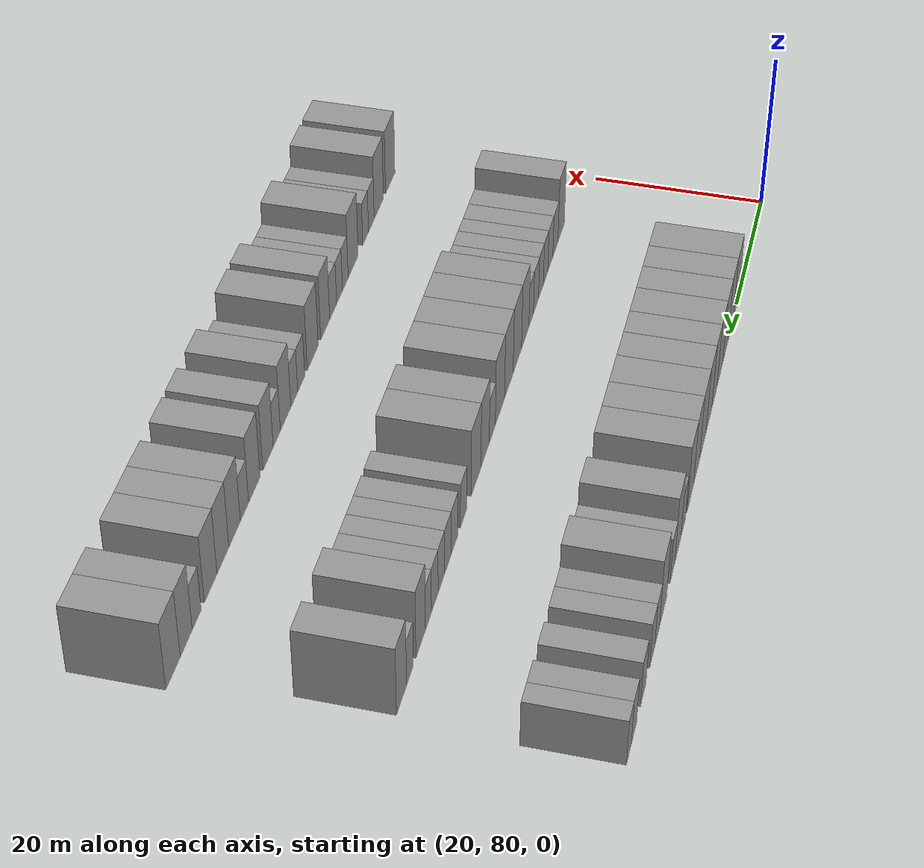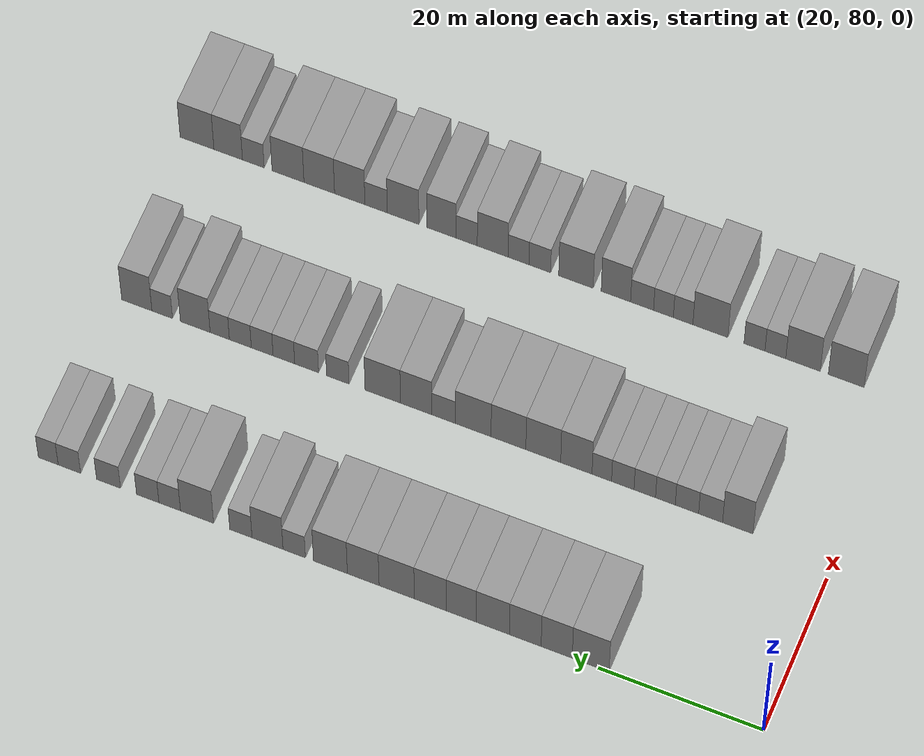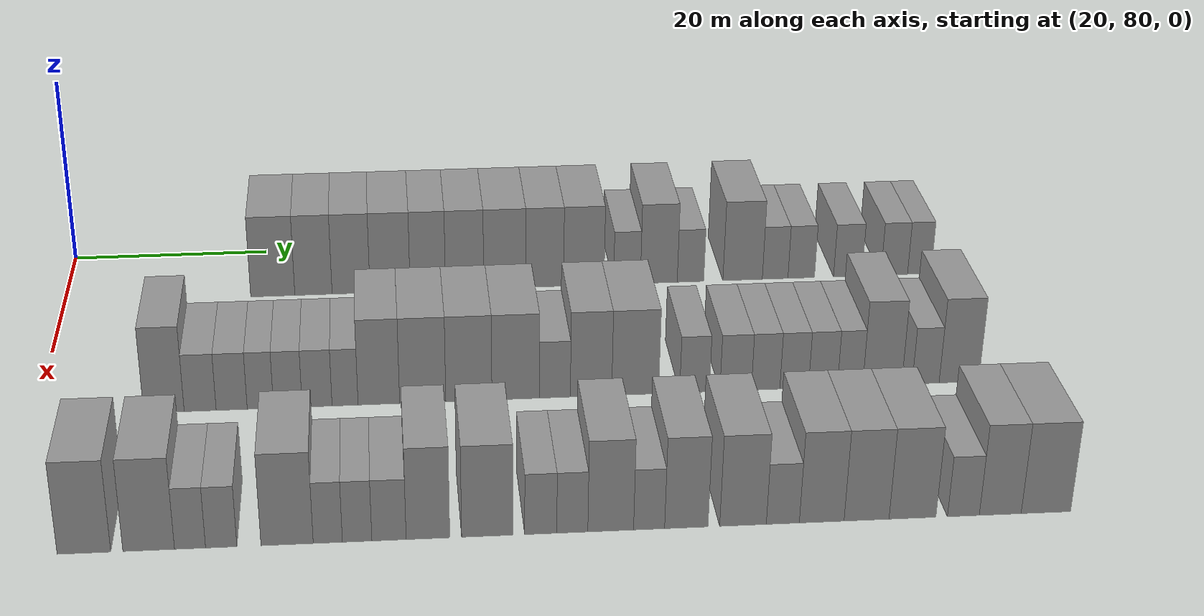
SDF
<sdf version="1.6">
 <world name="default">
  <model name="building_84">
   <static>1</static>
   <pose>25.0000 100.9925 0 0.000000 0.000000 0.000000</pose>
   <link name="link">
    <pose>0 0 4.50 0 0 0</pose>
    <collision name="collision"><geometry><box><size>10.0000 4.4793 9.0000</size></box></geometry></collision>
    <visual name="visual">
     <cast_shadows>0</cast_shadows>
     <geometry><box><size>10.0000 4.4793 9.0000</size></box></geometry>
     <material>
      <script>
       <uri>model://grey_wall/materials/scripts</uri>
       <uri>model://grey_wall/materials/textures</uri>
       <name>vrc/grey_wall</name>
      </script>
     </material>
    </visual>
   </link>
  </model>
  <model name="building_85">
   <static>1</static>
   <pose>25.0000 105.1284 0 0.000000 0.000000 0.000000</pose>
   <link name="link">
    <pose>0 0 4.50 0 0 0</pose>
    <collision name="collision"><geometry><box><size>10.0000 3.7925 9.0000</size></box></geometry></collision>
    <visual name="visual">
     <cast_shadows>0</cast_shadows>
     <geometry><box><size>10.0000 3.7925 9.0000</size></box></geometry>
     <material>
      <script>
       <uri>model://grey_wall/materials/scripts</uri>
       <uri>model://grey_wall/materials/textures</uri>
       <name>vrc/grey_wall</name>
      </script>
     </material>
    </visual>
   </link>
  </model>
  <model name="building_86">
   <static>1</static>
   <pose>25.0000 108.9590 0 0.000000 0.000000 0.000000</pose>
   <link name="link">
    <pose>0 0 4.50 0 0 0</pose>
    <collision name="collision"><geometry><box><size>10.0000 3.8688 9.0000</size></box></geometry></collision>
    <visual name="visual">
     <cast_shadows>0</cast_shadows>
     <geometry><box><size>10.0000 3.8688 9.0000</size></box></geometry>
     <material>
      <script>
       <uri>model://grey_wall/materials/scripts</uri>
       <uri>model://grey_wall/materials/textures</uri>
       <name>vrc/grey_wall</name>
      </script>
     </material>
    </visual>
   </link>
  </model>
  <model name="building_87">
   <static>1</static>
   <pose>25.0000 112.9441 0 0.000000 0.000000 0.000000</pose>
   <link name="link">
    <pose>0 0 4.50 0 0 0</pose>
    <collision name="collision"><geometry><box><size>10.0000 4.1012 9.0000</size></box></geometry></collision>
    <visual name="visual">
     <cast_shadows>0</cast_shadows>
     <geometry><box><size>10.0000 4.1012 9.0000</size></box></geometry>
     <material>
      <script>
       <uri>model://grey_wall/materials/scripts</uri>
       <uri>model://grey_wall/materials/textures</uri>
       <name>vrc/grey_wall</name>
      </script>
     </material>
    </visual>
   </link>
  </model>
  <model name="building_88">
   <static>1</static>
   <pose>25.0000 116.8053 0 0.000000 0.000000 0.000000</pose>
   <link name="link">
    <pose>0 0 4.50 0 0 0</pose>
    <collision name="collision"><geometry><box><size>10.0000 3.6213 9.0000</size></box></geometry></collision>
    <visual name="visual">
     <cast_shadows>0</cast_shadows>
     <geometry><box><size>10.0000 3.6213 9.0000</size></box></geometry>
     <material>
      <script>
       <uri>model://grey_wall/materials/scripts</uri>
       <uri>model://grey_wall/materials/textures</uri>
       <name>vrc/grey_wall</name>
      </script>
     </material>
    </visual>
   </link>
  </model>
  <model name="building_89">
   <static>1</static>
   <pose>25.0000 120.5786 0 0.000000 0.000000 0.000000</pose>
   <link name="link">
    <pose>0 0 4.50 0 0 0</pose>
    <collision name="collision"><geometry><box><size>10.0000 3.9252 9.0000</size></box></geometry></collision>
    <visual name="visual">
     <cast_shadows>0</cast_shadows>
     <geometry><box><size>10.0000 3.9252 9.0000</size></box></geometry>
     <material>
      <script>
       <uri>model://grey_wall/materials/scripts</uri>
       <uri>model://grey_wall/materials/textures</uri>
       <name>vrc/grey_wall</name>
      </script>
     </material>
    </visual>
   </link>
  </model>
  <model name="building_90">
   <static>1</static>
   <pose>25.0000 124.7098 0 0.000000 0.000000 0.000000</pose>
   <link name="link">
    <pose>0 0 4.50 0 0 0</pose>
    <collision name="collision"><geometry><box><size>10.0000 4.3372 9.0000</size></box></geometry></collision>
    <visual name="visual">
     <cast_shadows>0</cast_shadows>
     <geometry><box><size>10.0000 4.3372 9.0000</size></box></geometry>
     <material>
      <script>
       <uri>model://grey_wall/materials/scripts</uri>
       <uri>model://grey_wall/materials/textures</uri>
       <name>vrc/grey_wall</name>
      </script>
     </material>
    </visual>
   </link>
  </model>
  <model name="building_91">
   <static>1</static>
   <pose>25.0000 128.8318 0 0.000000 0.000000 0.000000</pose>
   <link name="link">
    <pose>0 0 4.50 0 0 0</pose>
    <collision name="collision"><geometry><box><size>10.0000 3.9068 9.0000</size></box></geometry></collision>
    <visual name="visual">
     <cast_shadows>0</cast_shadows>
     <geometry><box><size>10.0000 3.9068 9.0000</size></box></geometry>
     <material>
      <script>
       <uri>model://grey_wall/materials/scripts</uri>
       <uri>model://grey_wall/materials/textures</uri>
       <name>vrc/grey_wall</name>
      </script>
     </material>
    </visual>
   </link>
  </model>
  <model name="building_92">
   <static>1</static>
   <pose>25.0000 132.8733 0 0.000000 0.000000 0.000000</pose>
   <link name="link">
    <pose>0 0 4.50 0 0 0</pose>
    <collision name="collision"><geometry><box><size>10.0000 4.1762 9.0000</size></box></geometry></collision>
    <visual name="visual">
     <cast_shadows>0</cast_shadows>
     <geometry><box><size>10.0000 4.1762 9.0000</size></box></geometry>
     <material>
      <script>
       <uri>model://grey_wall/materials/scripts</uri>
       <uri>model://grey_wall/materials/textures</uri>
       <name>vrc/grey_wall</name>
      </script>
     </material>
    </visual>
   </link>
  </model>
  <model name="building_93">
   <static>1</static>
   <pose>25.0000 137.3470 0 0.000000 0.000000 0.000000</pose>
   <link name="link">
    <pose>0 0 3.00 0 0 0</pose>
    <collision name="collision"><geometry><box><size>10.0000 2.7713 6.0000</size></box></geometry></collision>
    <visual name="visual">
     <cast_shadows>0</cast_shadows>
     <geometry><box><size>10.0000 2.7713 6.0000</size></box></geometry>
     <material>
      <script>
       <uri>model://grey_wall/materials/scripts</uri>
       <uri>model://grey_wall/materials/textures</uri>
       <name>vrc/grey_wall</name>
      </script>
     </material>
    </visual>
   </link>
  </model>
  <model name="building_94">
   <static>1</static>
   <pose>25.0000 140.6502 0 0.000000 0.000000 0.000000</pose>
   <link name="link">
    <pose>0 0 4.50 0 0 0</pose>
    <collision name="collision"><geometry><box><size>10.0000 3.8351 9.0000</size></box></geometry></collision>
    <visual name="visual">
     <cast_shadows>0</cast_shadows>
     <geometry><box><size>10.0000 3.8351 9.0000</size></box></geometry>
     <material>
      <script>
       <uri>model://grey_wall/materials/scripts</uri>
       <uri>model://grey_wall/materials/textures</uri>
       <name>vrc/grey_wall</name>
      </script>
     </material>
    </visual>
   </link>
  </model>
  <model name="building_95">
   <static>1</static>
   <pose>25.0000 143.9493 0 0.000000 0.000000 0.000000</pose>
   <link name="link">
    <pose>0 0 3.00 0 0 0</pose>
    <collision name="collision"><geometry><box><size>10.0000 2.7630 6.0000</size></box></geometry></collision>
    <visual name="visual">
     <cast_shadows>0</cast_shadows>
     <geometry><box><size>10.0000 2.7630 6.0000</size></box></geometry>
     <material>
      <script>
       <uri>model://grey_wall/materials/scripts</uri>
       <uri>model://grey_wall/materials/textures</uri>
       <name>vrc/grey_wall</name>
      </script>
     </material>
    </visual>
   </link>
  </model>
  <model name="building_96">
   <static>1</static>
   <pose>25.0000 149.3896 0 0.000000 0.000000 0.000000</pose>
   <link name="link">
    <pose>0 0 4.50 0 0 0</pose>
    <collision name="collision"><geometry><box><size>10.0000 4.1176 9.0000</size></box></geometry></collision>
    <visual name="visual">
     <cast_shadows>0</cast_shadows>
     <geometry><box><size>10.0000 4.1176 9.0000</size></box></geometry>
     <material>
      <script>
       <uri>model://grey_wall/materials/scripts</uri>
       <uri>model://grey_wall/materials/textures</uri>
       <name>vrc/grey_wall</name>
      </script>
     </material>
    </visual>
   </link>
  </model>
  <model name="building_97">
   <static>1</static>
   <pose>25.0000 152.7905 0 0.000000 0.000000 0.000000</pose>
   <link name="link">
    <pose>0 0 3.00 0 0 0</pose>
    <collision name="collision"><geometry><box><size>10.0000 2.6843 6.0000</size></box></geometry></collision>
    <visual name="visual">
     <cast_shadows>0</cast_shadows>
     <geometry><box><size>10.0000 2.6843 6.0000</size></box></geometry>
     <material>
      <script>
       <uri>model://grey_wall/materials/scripts</uri>
       <uri>model://grey_wall/materials/textures</uri>
       <name>vrc/grey_wall</name>
      </script>
     </material>
    </visual>
   </link>
  </model>
  <model name="building_98">
   <static>1</static>
   <pose>25.0000 155.5267 0 0.000000 0.000000 0.000000</pose>
   <link name="link">
    <pose>0 0 3.00 0 0 0</pose>
    <collision name="collision"><geometry><box><size>10.0000 2.7880 6.0000</size></box></geometry></collision>
    <visual name="visual">
     <cast_shadows>0</cast_shadows>
     <geometry><box><size>10.0000 2.7880 6.0000</size></box></geometry>
     <material>
      <script>
       <uri>model://grey_wall/materials/scripts</uri>
       <uri>model://grey_wall/materials/textures</uri>
       <name>vrc/grey_wall</name>
      </script>
     </material>
    </visual>
   </link>
  </model>
  <model name="building_99">
   <static>1</static>
   <pose>25.0000 160.4130 0 0.000000 0.000000 0.000000</pose>
   <link name="link">
    <pose>0 0 3.00 0 0 0</pose>
    <collision name="collision"><geometry><box><size>10.0000 2.9847 6.0000</size></box></geometry></collision>
    <visual name="visual">
     <cast_shadows>0</cast_shadows>
     <geometry><box><size>10.0000 2.9847 6.0000</size></box></geometry>
     <material>
      <script>
       <uri>model://grey_wall/materials/scripts</uri>
       <uri>model://grey_wall/materials/textures</uri>
       <name>vrc/grey_wall</name>
      </script>
     </material>
    </visual>
   </link>
  </model>
  <model name="building_100">
   <static>1</static>
   <pose>25.0000 165.3117 0 0.000000 0.000000 0.000000</pose>
   <link name="link">
    <pose>0 0 3.00 0 0 0</pose>
    <collision name="collision"><geometry><box><size>10.0000 2.8128 6.0000</size></box></geometry></collision>
    <visual name="visual">
     <cast_shadows>0</cast_shadows>
     <geometry><box><size>10.0000 2.8128 6.0000</size></box></geometry>
     <material>
      <script>
       <uri>model://grey_wall/materials/scripts</uri>
       <uri>model://grey_wall/materials/textures</uri>
       <name>vrc/grey_wall</name>
      </script>
     </material>
    </visual>
   </link>
  </model>
  <model name="building_101">
   <static>1</static>
   <pose>25.0000 167.9544 0 0.000000 0.000000 0.000000</pose>
   <link name="link">
    <pose>0 0 3.00 0 0 0</pose>
    <collision name="collision"><geometry><box><size>10.0000 2.4724 6.0000</size></box></geometry></collision>
    <visual name="visual">
     <cast_shadows>0</cast_shadows>
     <geometry><box><size>10.0000 2.4724 6.0000</size></box></geometry>
     <material>
      <script>
       <uri>model://grey_wall/materials/scripts</uri>
       <uri>model://grey_wall/materials/textures</uri>
       <name>vrc/grey_wall</name>
      </script>
     </material>
    </visual>
   </link>
  </model>
  <model name="building_211">
   <static>1</static>
   <pose>47.0000 91.6652 0 0.000000 0.000000 0.000000</pose>
   <link name="link">
    <pose>0 0 4.50 0 0 0</pose>
    <collision name="collision"><geometry><box><size>10.0000 3.7141 9.0000</size></box></geometry></collision>
    <visual name="visual">
     <cast_shadows>0</cast_shadows>
     <geometry><box><size>10.0000 3.7141 9.0000</size></box></geometry>
     <material>
      <script>
       <uri>model://grey_wall/materials/scripts</uri>
       <uri>model://grey_wall/materials/textures</uri>
       <name>vrc/grey_wall</name>
      </script>
     </material>
    </visual>
   </link>
  </model>
  <model name="building_212">
   <static>1</static>
   <pose>47.0000 94.9913 0 0.000000 0.000000 0.000000</pose>
   <link name="link">
    <pose>0 0 3.00 0 0 0</pose>
    <collision name="collision"><geometry><box><size>10.0000 2.9380 6.0000</size></box></geometry></collision>
    <visual name="visual">
     <cast_shadows>0</cast_shadows>
     <geometry><box><size>10.0000 2.9380 6.0000</size></box></geometry>
     <material>
      <script>
       <uri>model://grey_wall/materials/scripts</uri>
       <uri>model://grey_wall/materials/textures</uri>
       <name>vrc/grey_wall</name>
      </script>
     </material>
    </visual>
   </link>
  </model>
  <model name="building_213">
   <static>1</static>
   <pose>47.0000 97.8929 0 0.000000 0.000000 0.000000</pose>
   <link name="link">
    <pose>0 0 3.00 0 0 0</pose>
    <collision name="collision"><geometry><box><size>10.0000 2.8651 6.0000</size></box></geometry></collision>
    <visual name="visual">
     <cast_shadows>0</cast_shadows>
     <geometry><box><size>10.0000 2.8651 6.0000</size></box></geometry>
     <material>
      <script>
       <uri>model://grey_wall/materials/scripts</uri>
       <uri>model://grey_wall/materials/textures</uri>
       <name>vrc/grey_wall</name>
      </script>
     </material>
    </visual>
   </link>
  </model>
  <model name="building_214">
   <static>1</static>
   <pose>47.0000 100.5394 0 0.000000 0.000000 0.000000</pose>
   <link name="link">
    <pose>0 0 3.00 0 0 0</pose>
    <collision name="collision"><geometry><box><size>10.0000 2.4280 6.0000</size></box></geometry></collision>
    <visual name="visual">
     <cast_shadows>0</cast_shadows>
     <geometry><box><size>10.0000 2.4280 6.0000</size></box></geometry>
     <material>
      <script>
       <uri>model://grey_wall/materials/scripts</uri>
       <uri>model://grey_wall/materials/textures</uri>
       <name>vrc/grey_wall</name>
      </script>
     </material>
    </visual>
   </link>
  </model>
  <model name="building_215">
   <static>1</static>
   <pose>47.0000 103.0759 0 0.000000 0.000000 0.000000</pose>
   <link name="link">
    <pose>0 0 3.00 0 0 0</pose>
    <collision name="collision"><geometry><box><size>10.0000 2.6451 6.0000</size></box></geometry></collision>
    <visual name="visual">
     <cast_shadows>0</cast_shadows>
     <geometry><box><size>10.0000 2.6451 6.0000</size></box></geometry>
     <material>
      <script>
       <uri>model://grey_wall/materials/scripts</uri>
       <uri>model://grey_wall/materials/textures</uri>
       <name>vrc/grey_wall</name>
      </script>
     </material>
    </visual>
   </link>
  </model>
  <model name="building_216">
   <static>1</static>
   <pose>47.0000 105.7823 0 0.000000 0.000000 0.000000</pose>
   <link name="link">
    <pose>0 0 3.00 0 0 0</pose>
    <collision name="collision"><geometry><box><size>10.0000 2.7676 6.0000</size></box></geometry></collision>
    <visual name="visual">
     <cast_shadows>0</cast_shadows>
     <geometry><box><size>10.0000 2.7676 6.0000</size></box></geometry>
     <material>
      <script>
       <uri>model://grey_wall/materials/scripts</uri>
       <uri>model://grey_wall/materials/textures</uri>
       <name>vrc/grey_wall</name>
      </script>
     </material>
    </visual>
   </link>
  </model>
  <model name="building_217">
   <static>1</static>
   <pose>47.0000 108.3721 0 0.000000 0.000000 0.000000</pose>
   <link name="link">
    <pose>0 0 3.00 0 0 0</pose>
    <collision name="collision"><geometry><box><size>10.0000 2.4120 6.0000</size></box></geometry></collision>
    <visual name="visual">
     <cast_shadows>0</cast_shadows>
     <geometry><box><size>10.0000 2.4120 6.0000</size></box></geometry>
     <material>
      <script>
       <uri>model://grey_wall/materials/scripts</uri>
       <uri>model://grey_wall/materials/textures</uri>
       <name>vrc/grey_wall</name>
      </script>
     </material>
    </visual>
   </link>
  </model>
  <model name="building_218">
   <static>1</static>
   <pose>47.0000 111.5101 0 0.000000 0.000000 0.000000</pose>
   <link name="link">
    <pose>0 0 4.50 0 0 0</pose>
    <collision name="collision"><geometry><box><size>10.0000 3.8639 9.0000</size></box></geometry></collision>
    <visual name="visual">
     <cast_shadows>0</cast_shadows>
     <geometry><box><size>10.0000 3.8639 9.0000</size></box></geometry>
     <material>
      <script>
       <uri>model://grey_wall/materials/scripts</uri>
       <uri>model://grey_wall/materials/textures</uri>
       <name>vrc/grey_wall</name>
      </script>
     </material>
    </visual>
   </link>
  </model>
  <model name="building_219">
   <static>1</static>
   <pose>47.0000 115.5939 0 0.000000 0.000000 0.000000</pose>
   <link name="link">
    <pose>0 0 4.50 0 0 0</pose>
    <collision name="collision"><geometry><box><size>10.0000 4.3036 9.0000</size></box></geometry></collision>
    <visual name="visual">
     <cast_shadows>0</cast_shadows>
     <geometry><box><size>10.0000 4.3036 9.0000</size></box></geometry>
     <material>
      <script>
       <uri>model://grey_wall/materials/scripts</uri>
       <uri>model://grey_wall/materials/textures</uri>
       <name>vrc/grey_wall</name>
      </script>
     </material>
    </visual>
   </link>
  </model>
  <model name="building_220">
   <static>1</static>
   <pose>47.0000 119.9001 0 0.000000 0.000000 0.000000</pose>
   <link name="link">
    <pose>0 0 4.50 0 0 0</pose>
    <collision name="collision"><geometry><box><size>10.0000 4.3089 9.0000</size></box></geometry></collision>
    <visual name="visual">
     <cast_shadows>0</cast_shadows>
     <geometry><box><size>10.0000 4.3089 9.0000</size></box></geometry>
     <material>
      <script>
       <uri>model://grey_wall/materials/scripts</uri>
       <uri>model://grey_wall/materials/textures</uri>
       <name>vrc/grey_wall</name>
      </script>
     </material>
    </visual>
   </link>
  </model>
  <model name="building_221">
   <static>1</static>
   <pose>47.0000 124.2778 0 0.000000 0.000000 0.000000</pose>
   <link name="link">
    <pose>0 0 4.50 0 0 0</pose>
    <collision name="collision"><geometry><box><size>10.0000 4.4464 9.0000</size></box></geometry></collision>
    <visual name="visual">
     <cast_shadows>0</cast_shadows>
     <geometry><box><size>10.0000 4.4464 9.0000</size></box></geometry>
     <material>
      <script>
       <uri>model://grey_wall/materials/scripts</uri>
       <uri>model://grey_wall/materials/textures</uri>
       <name>vrc/grey_wall</name>
      </script>
     </material>
    </visual>
   </link>
  </model>
  <model name="building_222">
   <static>1</static>
   <pose>47.0000 127.9565 0 0.000000 0.000000 0.000000</pose>
   <link name="link">
    <pose>0 0 3.00 0 0 0</pose>
    <collision name="collision"><geometry><box><size>10.0000 2.9110 6.0000</size></box></geometry></collision>
    <visual name="visual">
     <cast_shadows>0</cast_shadows>
     <geometry><box><size>10.0000 2.9110 6.0000</size></box></geometry>
     <material>
      <script>
       <uri>model://grey_wall/materials/scripts</uri>
       <uri>model://grey_wall/materials/textures</uri>
       <name>vrc/grey_wall</name>
      </script>
     </material>
    </visual>
   </link>
  </model>
  <model name="building_223">
   <static>1</static>
   <pose>47.0000 131.3579 0 0.000000 0.000000 0.000000</pose>
   <link name="link">
    <pose>0 0 4.50 0 0 0</pose>
    <collision name="collision"><geometry><box><size>10.0000 3.8919 9.0000</size></box></geometry></collision>
    <visual name="visual">
     <cast_shadows>0</cast_shadows>
     <geometry><box><size>10.0000 3.8919 9.0000</size></box></geometry>
     <material>
      <script>
       <uri>model://grey_wall/materials/scripts</uri>
       <uri>model://grey_wall/materials/textures</uri>
       <name>vrc/grey_wall</name>
      </script>
     </material>
    </visual>
   </link>
  </model>
  <model name="building_224">
   <static>1</static>
   <pose>47.0000 135.5166 0 0.000000 0.000000 0.000000</pose>
   <link name="link">
    <pose>0 0 4.50 0 0 0</pose>
    <collision name="collision"><geometry><box><size>10.0000 4.4255 9.0000</size></box></geometry></collision>
    <visual name="visual">
     <cast_shadows>0</cast_shadows>
     <geometry><box><size>10.0000 4.4255 9.0000</size></box></geometry>
     <material>
      <script>
       <uri>model://grey_wall/materials/scripts</uri>
       <uri>model://grey_wall/materials/textures</uri>
       <name>vrc/grey_wall</name>
      </script>
     </material>
    </visual>
   </link>
  </model>
  <model name="building_225">
   <static>1</static>
   <pose>47.0000 141.1358 0 0.000000 0.000000 0.000000</pose>
   <link name="link">
    <pose>0 0 3.00 0 0 0</pose>
    <collision name="collision"><geometry><box><size>10.0000 2.8129 6.0000</size></box></geometry></collision>
    <visual name="visual">
     <cast_shadows>0</cast_shadows>
     <geometry><box><size>10.0000 2.8129 6.0000</size></box></geometry>
     <material>
      <script>
       <uri>model://grey_wall/materials/scripts</uri>
       <uri>model://grey_wall/materials/textures</uri>
       <name>vrc/grey_wall</name>
      </script>
     </material>
    </visual>
   </link>
  </model>
  <model name="building_226">
   <static>1</static>
   <pose>47.0000 145.0381 0 0.000000 0.000000 0.000000</pose>
   <link name="link">
    <pose>0 0 3.00 0 0 0</pose>
    <collision name="collision"><geometry><box><size>10.0000 2.9916 6.0000</size></box></geometry></collision>
    <visual name="visual">
     <cast_shadows>0</cast_shadows>
     <geometry><box><size>10.0000 2.9916 6.0000</size></box></geometry>
     <material>
      <script>
       <uri>model://grey_wall/materials/scripts</uri>
       <uri>model://grey_wall/materials/textures</uri>
       <name>vrc/grey_wall</name>
      </script>
     </material>
    </visual>
   </link>
  </model>
  <model name="building_227">
   <static>1</static>
   <pose>47.0000 147.8905 0 0.000000 0.000000 0.000000</pose>
   <link name="link">
    <pose>0 0 3.00 0 0 0</pose>
    <collision name="collision"><geometry><box><size>10.0000 2.7133 6.0000</size></box></geometry></collision>
    <visual name="visual">
     <cast_shadows>0</cast_shadows>
     <geometry><box><size>10.0000 2.7133 6.0000</size></box></geometry>
     <material>
      <script>
       <uri>model://grey_wall/materials/scripts</uri>
       <uri>model://grey_wall/materials/textures</uri>
       <name>vrc/grey_wall</name>
      </script>
     </material>
    </visual>
   </link>
  </model>
  <model name="building_228">
   <static>1</static>
   <pose>47.0000 150.6139 0 0.000000 0.000000 0.000000</pose>
   <link name="link">
    <pose>0 0 3.00 0 0 0</pose>
    <collision name="collision"><geometry><box><size>10.0000 2.7334 6.0000</size></box></geometry></collision>
    <visual name="visual">
     <cast_shadows>0</cast_shadows>
     <geometry><box><size>10.0000 2.7334 6.0000</size></box></geometry>
     <material>
      <script>
       <uri>model://grey_wall/materials/scripts</uri>
       <uri>model://grey_wall/materials/textures</uri>
       <name>vrc/grey_wall</name>
      </script>
     </material>
    </visual>
   </link>
  </model>
  <model name="building_229">
   <static>1</static>
   <pose>47.0000 153.3597 0 0.000000 0.000000 0.000000</pose>
   <link name="link">
    <pose>0 0 3.00 0 0 0</pose>
    <collision name="collision"><geometry><box><size>10.0000 2.7584 6.0000</size></box></geometry></collision>
    <visual name="visual">
     <cast_shadows>0</cast_shadows>
     <geometry><box><size>10.0000 2.7584 6.0000</size></box></geometry>
     <material>
      <script>
       <uri>model://grey_wall/materials/scripts</uri>
       <uri>model://grey_wall/materials/textures</uri>
       <name>vrc/grey_wall</name>
      </script>
     </material>
    </visual>
   </link>
  </model>
  <model name="building_230">
   <static>1</static>
   <pose>47.0000 155.9486 0 0.000000 0.000000 0.000000</pose>
   <link name="link">
    <pose>0 0 3.00 0 0 0</pose>
    <collision name="collision"><geometry><box><size>10.0000 2.4192 6.0000</size></box></geometry></collision>
    <visual name="visual">
     <cast_shadows>0</cast_shadows>
     <geometry><box><size>10.0000 2.4192 6.0000</size></box></geometry>
     <material>
      <script>
       <uri>model://grey_wall/materials/scripts</uri>
       <uri>model://grey_wall/materials/textures</uri>
       <name>vrc/grey_wall</name>
      </script>
     </material>
    </visual>
   </link>
  </model>
  <model name="building_231">
   <static>1</static>
   <pose>47.0000 159.0295 0 0.000000 0.000000 0.000000</pose>
   <link name="link">
    <pose>0 0 4.50 0 0 0</pose>
    <collision name="collision"><geometry><box><size>10.0000 3.7427 9.0000</size></box></geometry></collision>
    <visual name="visual">
     <cast_shadows>0</cast_shadows>
     <geometry><box><size>10.0000 3.7427 9.0000</size></box></geometry>
     <material>
      <script>
       <uri>model://grey_wall/materials/scripts</uri>
       <uri>model://grey_wall/materials/textures</uri>
       <name>vrc/grey_wall</name>
      </script>
     </material>
    </visual>
   </link>
  </model>
  <model name="building_232">
   <static>1</static>
   <pose>47.0000 163.1984 0 0.000000 0.000000 0.000000</pose>
   <link name="link">
    <pose>0 0 3.00 0 0 0</pose>
    <collision name="collision"><geometry><box><size>10.0000 2.5952 6.0000</size></box></geometry></collision>
    <visual name="visual">
     <cast_shadows>0</cast_shadows>
     <geometry><box><size>10.0000 2.5952 6.0000</size></box></geometry>
     <material>
      <script>
       <uri>model://grey_wall/materials/scripts</uri>
       <uri>model://grey_wall/materials/textures</uri>
       <name>vrc/grey_wall</name>
      </script>
     </material>
    </visual>
   </link>
  </model>
  <model name="building_233">
   <static>1</static>
   <pose>47.0000 166.4016 0 0.000000 0.000000 0.000000</pose>
   <link name="link">
    <pose>0 0 4.50 0 0 0</pose>
    <collision name="collision"><geometry><box><size>10.0000 3.8112 9.0000</size></box></geometry></collision>
    <visual name="visual">
     <cast_shadows>0</cast_shadows>
     <geometry><box><size>10.0000 3.8112 9.0000</size></box></geometry>
     <material>
      <script>
       <uri>model://grey_wall/materials/scripts</uri>
       <uri>model://grey_wall/materials/textures</uri>
       <name>vrc/grey_wall</name>
      </script>
     </material>
    </visual>
   </link>
  </model>
  <model name="building_341">
   <static>1</static>
   <pose>69.0000 86.7571 0 0.000000 0.000000 0.000000</pose>
   <link name="link">
    <pose>0 0 4.50 0 0 0</pose>
    <collision name="collision"><geometry><box><size>10.0000 4.4089 9.0000</size></box></geometry></collision>
    <visual name="visual">
     <cast_shadows>0</cast_shadows>
     <geometry><box><size>10.0000 4.4089 9.0000</size></box></geometry>
     <material>
      <script>
       <uri>model://grey_wall/materials/scripts</uri>
       <uri>model://grey_wall/materials/textures</uri>
       <name>vrc/grey_wall</name>
      </script>
     </material>
    </visual>
   </link>
  </model>
  <model name="building_342">
   <static>1</static>
   <pose>69.0000 92.0916 0 0.000000 0.000000 0.000000</pose>
   <link name="link">
    <pose>0 0 4.50 0 0 0</pose>
    <collision name="collision"><geometry><box><size>10.0000 4.2603 9.0000</size></box></geometry></collision>
    <visual name="visual">
     <cast_shadows>0</cast_shadows>
     <geometry><box><size>10.0000 4.2603 9.0000</size></box></geometry>
     <material>
      <script>
       <uri>model://grey_wall/materials/scripts</uri>
       <uri>model://grey_wall/materials/textures</uri>
       <name>vrc/grey_wall</name>
      </script>
     </material>
    </visual>
   </link>
  </model>
  <model name="building_343">
   <static>1</static>
   <pose>69.0000 95.5079 0 0.000000 0.000000 0.000000</pose>
   <link name="link">
    <pose>0 0 3.00 0 0 0</pose>
    <collision name="collision"><geometry><box><size>10.0000 2.5723 6.0000</size></box></geometry></collision>
    <visual name="visual">
     <cast_shadows>0</cast_shadows>
     <geometry><box><size>10.0000 2.5723 6.0000</size></box></geometry>
     <material>
      <script>
       <uri>model://grey_wall/materials/scripts</uri>
       <uri>model://grey_wall/materials/textures</uri>
       <name>vrc/grey_wall</name>
      </script>
     </material>
    </visual>
   </link>
  </model>
  <model name="building_344">
   <static>1</static>
   <pose>69.0000 98.0931 0 0.000000 0.000000 0.000000</pose>
   <link name="link">
    <pose>0 0 3.00 0 0 0</pose>
    <collision name="collision"><geometry><box><size>10.0000 2.5981 6.0000</size></box></geometry></collision>
    <visual name="visual">
     <cast_shadows>0</cast_shadows>
     <geometry><box><size>10.0000 2.5981 6.0000</size></box></geometry>
     <material>
      <script>
       <uri>model://grey_wall/materials/scripts</uri>
       <uri>model://grey_wall/materials/textures</uri>
       <name>vrc/grey_wall</name>
      </script>
     </material>
    </visual>
   </link>
  </model>
  <model name="building_345">
   <static>1</static>
   <pose>69.0000 103.5662 0 0.000000 0.000000 0.000000</pose>
   <link name="link">
    <pose>0 0 4.50 0 0 0</pose>
    <collision name="collision"><geometry><box><size>10.0000 4.3481 9.0000</size></box></geometry></collision>
    <visual name="visual">
     <cast_shadows>0</cast_shadows>
     <geometry><box><size>10.0000 4.3481 9.0000</size></box></geometry>
     <material>
      <script>
       <uri>model://grey_wall/materials/scripts</uri>
       <uri>model://grey_wall/materials/textures</uri>
       <name>vrc/grey_wall</name>
      </script>
     </material>
    </visual>
   </link>
  </model>
  <model name="building_346">
   <static>1</static>
   <pose>69.0000 106.9568 0 0.000000 0.000000 0.000000</pose>
   <link name="link">
    <pose>0 0 3.00 0 0 0</pose>
    <collision name="collision"><geometry><box><size>10.0000 2.4331 6.0000</size></box></geometry></collision>
    <visual name="visual">
     <cast_shadows>0</cast_shadows>
     <geometry><box><size>10.0000 2.4331 6.0000</size></box></geometry>
     <material>
      <script>
       <uri>model://grey_wall/materials/scripts</uri>
       <uri>model://grey_wall/materials/textures</uri>
       <name>vrc/grey_wall</name>
      </script>
     </material>
    </visual>
   </link>
  </model>
  <model name="building_347">
   <static>1</static>
   <pose>69.0000 109.4055 0 0.000000 0.000000 0.000000</pose>
   <link name="link">
    <pose>0 0 3.00 0 0 0</pose>
    <collision name="collision"><geometry><box><size>10.0000 2.4643 6.0000</size></box></geometry></collision>
    <visual name="visual">
     <cast_shadows>0</cast_shadows>
     <geometry><box><size>10.0000 2.4643 6.0000</size></box></geometry>
     <material>
      <script>
       <uri>model://grey_wall/materials/scripts</uri>
       <uri>model://grey_wall/materials/textures</uri>
       <name>vrc/grey_wall</name>
      </script>
     </material>
    </visual>
   </link>
  </model>
  <model name="building_348">
   <static>1</static>
   <pose>69.0000 112.0730 0 0.000000 0.000000 0.000000</pose>
   <link name="link">
    <pose>0 0 3.00 0 0 0</pose>
    <collision name="collision"><geometry><box><size>10.0000 2.8707 6.0000</size></box></geometry></collision>
    <visual name="visual">
     <cast_shadows>0</cast_shadows>
     <geometry><box><size>10.0000 2.8707 6.0000</size></box></geometry>
     <material>
      <script>
       <uri>model://grey_wall/materials/scripts</uri>
       <uri>model://grey_wall/materials/textures</uri>
       <name>vrc/grey_wall</name>
      </script>
     </material>
    </visual>
   </link>
  </model>
  <model name="building_349">
   <static>1</static>
   <pose>69.0000 115.3397 0 0.000000 0.000000 0.000000</pose>
   <link name="link">
    <pose>0 0 4.50 0 0 0</pose>
    <collision name="collision"><geometry><box><size>10.0000 3.6627 9.0000</size></box></geometry></collision>
    <visual name="visual">
     <cast_shadows>0</cast_shadows>
     <geometry><box><size>10.0000 3.6627 9.0000</size></box></geometry>
     <material>
      <script>
       <uri>model://grey_wall/materials/scripts</uri>
       <uri>model://grey_wall/materials/textures</uri>
       <name>vrc/grey_wall</name>
      </script>
     </material>
    </visual>
   </link>
  </model>
  <model name="building_350">
   <static>1</static>
   <pose>69.0000 120.3306 0 0.000000 0.000000 0.000000</pose>
   <link name="link">
    <pose>0 0 4.50 0 0 0</pose>
    <collision name="collision"><geometry><box><size>10.0000 4.3192 9.0000</size></box></geometry></collision>
    <visual name="visual">
     <cast_shadows>0</cast_shadows>
     <geometry><box><size>10.0000 4.3192 9.0000</size></box></geometry>
     <material>
      <script>
       <uri>model://grey_wall/materials/scripts</uri>
       <uri>model://grey_wall/materials/textures</uri>
       <name>vrc/grey_wall</name>
      </script>
     </material>
    </visual>
   </link>
  </model>
  <model name="building_351">
   <static>1</static>
   <pose>69.0000 124.8431 0 0.000000 0.000000 0.000000</pose>
   <link name="link">
    <pose>0 0 3.00 0 0 0</pose>
    <collision name="collision"><geometry><box><size>10.0000 2.7059 6.0000</size></box></geometry></collision>
    <visual name="visual">
     <cast_shadows>0</cast_shadows>
     <geometry><box><size>10.0000 2.7059 6.0000</size></box></geometry>
     <material>
      <script>
       <uri>model://grey_wall/materials/scripts</uri>
       <uri>model://grey_wall/materials/textures</uri>
       <name>vrc/grey_wall</name>
      </script>
     </material>
    </visual>
   </link>
  </model>
  <model name="building_352">
   <static>1</static>
   <pose>69.0000 127.5111 0 0.000000 0.000000 0.000000</pose>
   <link name="link">
    <pose>0 0 3.00 0 0 0</pose>
    <collision name="collision"><geometry><box><size>10.0000 2.6301 6.0000</size></box></geometry></collision>
    <visual name="visual">
     <cast_shadows>0</cast_shadows>
     <geometry><box><size>10.0000 2.6301 6.0000</size></box></geometry>
     <material>
      <script>
       <uri>model://grey_wall/materials/scripts</uri>
       <uri>model://grey_wall/materials/textures</uri>
       <name>vrc/grey_wall</name>
      </script>
     </material>
    </visual>
   </link>
  </model>
  <model name="building_353">
   <static>1</static>
   <pose>69.0000 130.7681 0 0.000000 0.000000 0.000000</pose>
   <link name="link">
    <pose>0 0 4.50 0 0 0</pose>
    <collision name="collision"><geometry><box><size>10.0000 3.8837 9.0000</size></box></geometry></collision>
    <visual name="visual">
     <cast_shadows>0</cast_shadows>
     <geometry><box><size>10.0000 3.8837 9.0000</size></box></geometry>
     <material>
      <script>
       <uri>model://grey_wall/materials/scripts</uri>
       <uri>model://grey_wall/materials/textures</uri>
       <name>vrc/grey_wall</name>
      </script>
     </material>
    </visual>
   </link>
  </model>
  <model name="building_354">
   <static>1</static>
   <pose>69.0000 134.0315 0 0.000000 0.000000 0.000000</pose>
   <link name="link">
    <pose>0 0 3.00 0 0 0</pose>
    <collision name="collision"><geometry><box><size>10.0000 2.6431 6.0000</size></box></geometry></collision>
    <visual name="visual">
     <cast_shadows>0</cast_shadows>
     <geometry><box><size>10.0000 2.6431 6.0000</size></box></geometry>
     <material>
      <script>
       <uri>model://grey_wall/materials/scripts</uri>
       <uri>model://grey_wall/materials/textures</uri>
       <name>vrc/grey_wall</name>
      </script>
     </material>
    </visual>
   </link>
  </model>
  <model name="building_355">
   <static>1</static>
   <pose>69.0000 137.2027 0 0.000000 0.000000 0.000000</pose>
   <link name="link">
    <pose>0 0 4.50 0 0 0</pose>
    <collision name="collision"><geometry><box><size>10.0000 3.6993 9.0000</size></box></geometry></collision>
    <visual name="visual">
     <cast_shadows>0</cast_shadows>
     <geometry><box><size>10.0000 3.6993 9.0000</size></box></geometry>
     <material>
      <script>
       <uri>model://grey_wall/materials/scripts</uri>
       <uri>model://grey_wall/materials/textures</uri>
       <name>vrc/grey_wall</name>
      </script>
     </material>
    </visual>
   </link>
  </model>
  <model name="building_356">
   <static>1</static>
   <pose>69.0000 142.0497 0 0.000000 0.000000 0.000000</pose>
   <link name="link">
    <pose>0 0 4.50 0 0 0</pose>
    <collision name="collision"><geometry><box><size>10.0000 3.9948 9.0000</size></box></geometry></collision>
    <visual name="visual">
     <cast_shadows>0</cast_shadows>
     <geometry><box><size>10.0000 3.9948 9.0000</size></box></geometry>
     <material>
      <script>
       <uri>model://grey_wall/materials/scripts</uri>
       <uri>model://grey_wall/materials/textures</uri>
       <name>vrc/grey_wall</name>
      </script>
     </material>
    </visual>
   </link>
  </model>
  <model name="building_357">
   <static>1</static>
   <pose>69.0000 145.4624 0 0.000000 0.000000 0.000000</pose>
   <link name="link">
    <pose>0 0 3.00 0 0 0</pose>
    <collision name="collision"><geometry><box><size>10.0000 2.8305 6.0000</size></box></geometry></collision>
    <visual name="visual">
     <cast_shadows>0</cast_shadows>
     <geometry><box><size>10.0000 2.8305 6.0000</size></box></geometry>
     <material>
      <script>
       <uri>model://grey_wall/materials/scripts</uri>
       <uri>model://grey_wall/materials/textures</uri>
       <name>vrc/grey_wall</name>
      </script>
     </material>
    </visual>
   </link>
  </model>
  <model name="building_358">
   <static>1</static>
   <pose>69.0000 148.8018 0 0.000000 0.000000 0.000000</pose>
   <link name="link">
    <pose>0 0 4.50 0 0 0</pose>
    <collision name="collision"><geometry><box><size>10.0000 3.8485 9.0000</size></box></geometry></collision>
    <visual name="visual">
     <cast_shadows>0</cast_shadows>
     <geometry><box><size>10.0000 3.8485 9.0000</size></box></geometry>
     <material>
      <script>
       <uri>model://grey_wall/materials/scripts</uri>
       <uri>model://grey_wall/materials/textures</uri>
       <name>vrc/grey_wall</name>
      </script>
     </material>
    </visual>
   </link>
  </model>
  <model name="building_359">
   <static>1</static>
   <pose>69.0000 152.6672 0 0.000000 0.000000 0.000000</pose>
   <link name="link">
    <pose>0 0 4.50 0 0 0</pose>
    <collision name="collision"><geometry><box><size>10.0000 3.8823 9.0000</size></box></geometry></collision>
    <visual name="visual">
     <cast_shadows>0</cast_shadows>
     <geometry><box><size>10.0000 3.8823 9.0000</size></box></geometry>
     <material>
      <script>
       <uri>model://grey_wall/materials/scripts</uri>
       <uri>model://grey_wall/materials/textures</uri>
       <name>vrc/grey_wall</name>
      </script>
     </material>
    </visual>
   </link>
  </model>
  <model name="building_360">
   <static>1</static>
   <pose>69.0000 156.6377 0 0.000000 0.000000 0.000000</pose>
   <link name="link">
    <pose>0 0 4.50 0 0 0</pose>
    <collision name="collision"><geometry><box><size>10.0000 4.0586 9.0000</size></box></geometry></collision>
    <visual name="visual">
     <cast_shadows>0</cast_shadows>
     <geometry><box><size>10.0000 4.0586 9.0000</size></box></geometry>
     <material>
      <script>
       <uri>model://grey_wall/materials/scripts</uri>
       <uri>model://grey_wall/materials/textures</uri>
       <name>vrc/grey_wall</name>
      </script>
     </material>
    </visual>
   </link>
  </model>
  <model name="building_361">
   <static>1</static>
   <pose>69.0000 161.0497 0 0.000000 0.000000 0.000000</pose>
   <link name="link">
    <pose>0 0 3.00 0 0 0</pose>
    <collision name="collision"><geometry><box><size>10.0000 2.7655 6.0000</size></box></geometry></collision>
    <visual name="visual">
     <cast_shadows>0</cast_shadows>
     <geometry><box><size>10.0000 2.7655 6.0000</size></box></geometry>
     <material>
      <script>
       <uri>model://grey_wall/materials/scripts</uri>
       <uri>model://grey_wall/materials/textures</uri>
       <name>vrc/grey_wall</name>
      </script>
     </material>
    </visual>
   </link>
  </model>
  <model name="building_362">
   <static>1</static>
   <pose>69.0000 164.2518 0 0.000000 0.000000 0.000000</pose>
   <link name="link">
    <pose>0 0 4.50 0 0 0</pose>
    <collision name="collision"><geometry><box><size>10.0000 3.6386 9.0000</size></box></geometry></collision>
    <visual name="visual">
     <cast_shadows>0</cast_shadows>
     <geometry><box><size>10.0000 3.6386 9.0000</size></box></geometry>
     <material>
      <script>
       <uri>model://grey_wall/materials/scripts</uri>
       <uri>model://grey_wall/materials/textures</uri>
       <name>vrc/grey_wall</name>
      </script>
     </material>
    </visual>
   </link>
  </model>
  <model name="building_363">
   <static>1</static>
   <pose>69.0000 168.2260 0 0.000000 0.000000 0.000000</pose>
   <link name="link">
    <pose>0 0 4.50 0 0 0</pose>
    <collision name="collision"><geometry><box><size>10.0000 4.3098 9.0000</size></box></geometry></collision>
    <visual name="visual">
     <cast_shadows>0</cast_shadows>
     <geometry><box><size>10.0000 4.3098 9.0000</size></box></geometry>
     <material>
      <script>
       <uri>model://grey_wall/materials/scripts</uri>
       <uri>model://grey_wall/materials/textures</uri>
       <name>vrc/grey_wall</name>
      </script>
     </material>
    </visual>
   </link>
  </model>
 </world>
</sdf>
